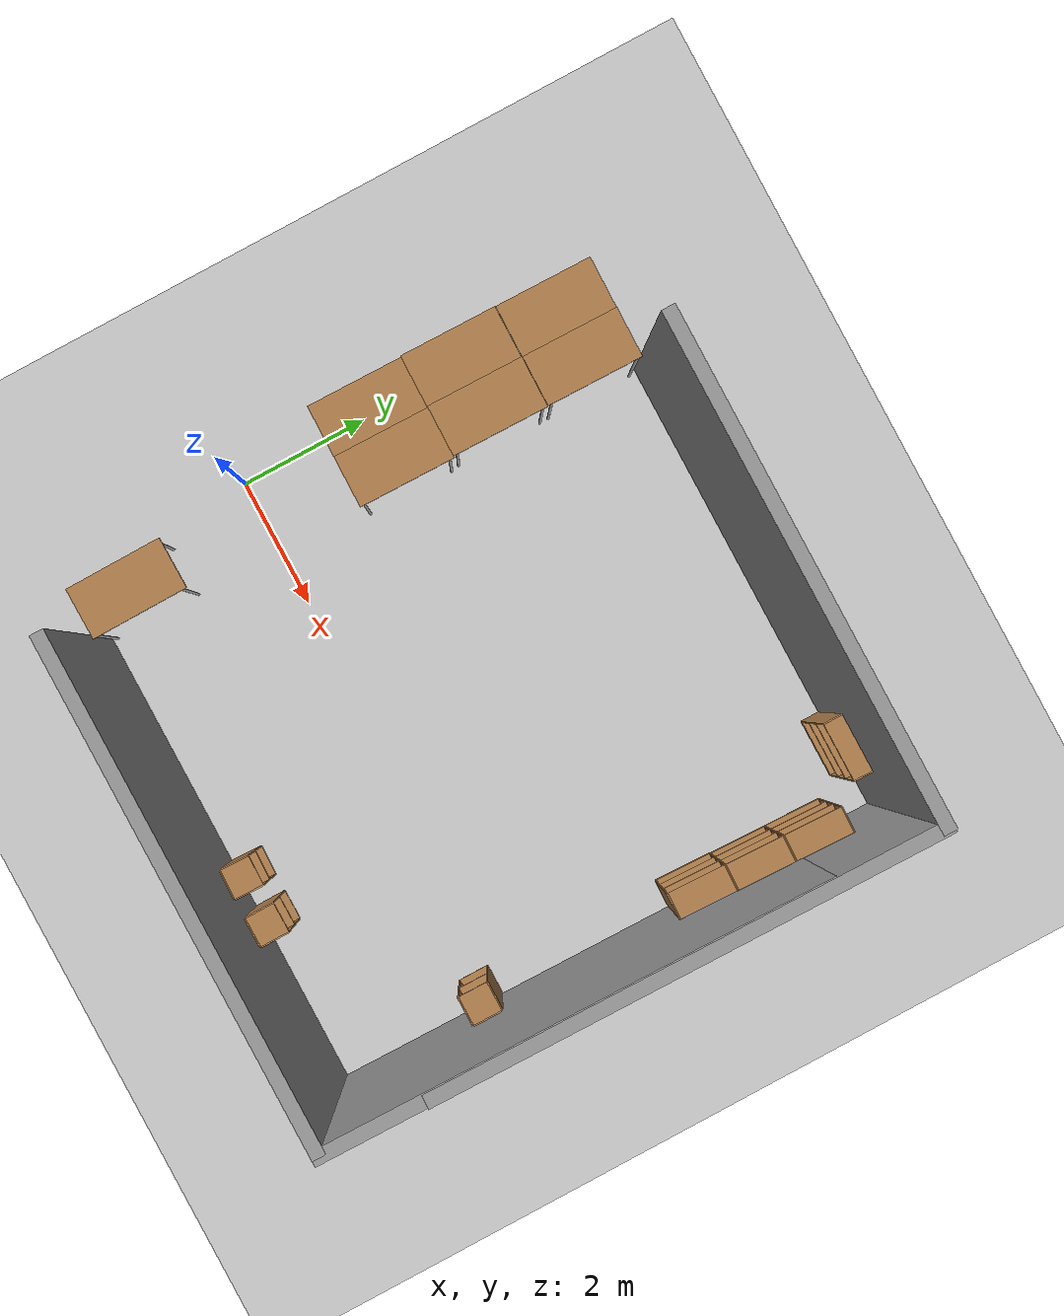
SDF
<sdf version="1.4">
 <world name="default">
  <model name="ground_plane">
   <static>1</static>
   <link name="link">
    <collision name="collision">
     <geometry><plane><normal>0 0 1</normal><size>100 100</size></plane></geometry>
     <surface><friction><ode><mu>100</mu><mu2>50</mu2></ode></friction></surface>
    </collision>
    <visual name="visual">
     <cast_shadows>0</cast_shadows>
     <geometry><plane><normal>0 0 1</normal><size>100 100</size></plane></geometry>
     <material>
      <script><uri>file://media/materials/scripts/gazebo.material</uri><name>Gazebo/Grey</name></script>
     </material>
    </visual>
    <velocity_decay><linear>0</linear><angular>0</angular></velocity_decay>
   </link>
  </model>
  <model name="grey_wall_0">
   <static>1</static>
   <link name="link">
    <pose>0 0 1.4 0 -0 0</pose>
    <collision name="collision"><geometry><box><size>7.5 0.2 2.8</size></box></geometry></collision>
    <visual name="visual">
     <cast_shadows>0</cast_shadows>
     <geometry><box><size>7.5 0.2 2.8</size></box></geometry>
     <material>
      <script>
       <uri>model://grey_wall/materials/scripts</uri>
       <uri>model://grey_wall/materials/textures</uri>
       <name>vrc/grey_wall</name>
      </script>
     </material>
    </visual>
    <velocity_decay><linear>0</linear><angular>0</angular></velocity_decay>
   </link>
   <pose>5 6 0 0 -0 0</pose>
  </model>
  <model name="table_5">
   <static>1</static>
   <link name="link">
    <collision name="surface">
     <pose>0 0 1 0 -0 0</pose>
     <geometry><box><size>1.5 0.8 0.03</size></box></geometry>
     <surface><friction><ode><mu>0.6</mu><mu2>0.6</mu2></ode></friction></surface>
    </collision>
    <visual name="visual1">
     <pose>0 0 1 0 -0 0</pose>
     <geometry><box><size>1.5 0.8 0.03</size></box></geometry>
     <material>
      <script><uri>file://media/materials/scripts/gazebo.material</uri><name>Gazebo/Wood</name></script>
     </material>
    </visual>
    <collision name="front_left_leg">
     <pose>0.68 0.38 0.5 0 -0 0</pose>
     <geometry><cylinder><radius>0.02</radius><length>1</length></cylinder></geometry>
    </collision>
    <visual name="front_left_leg">
     <pose>0.68 0.38 0.5 0 -0 0</pose>
     <geometry><cylinder><radius>0.02</radius><length>1</length></cylinder></geometry>
     <material>
      <script><uri>file://media/materials/scripts/gazebo.material</uri><name>Gazebo/Grey</name></script>
     </material>
    </visual>
    <collision name="front_right_leg">
     <pose>0.68 -0.38 0.5 0 -0 0</pose>
     <geometry><cylinder><radius>0.02</radius><length>1</length></cylinder></geometry>
    </collision>
    <visual name="front_right_leg">
     <pose>0.68 -0.38 0.5 0 -0 0</pose>
     <geometry><cylinder><radius>0.02</radius><length>1</length></cylinder></geometry>
     <material>
      <script><uri>file://media/materials/scripts/gazebo.material</uri><name>Gazebo/Grey</name></script>
     </material>
    </visual>
    <collision name="back_right_leg">
     <pose>-0.68 -0.38 0.5 0 -0 0</pose>
     <geometry><cylinder><radius>0.02</radius><length>1</length></cylinder></geometry>
    </collision>
    <visual name="back_right_leg">
     <pose>-0.68 -0.38 0.5 0 -0 0</pose>
     <geometry><cylinder><radius>0.02</radius><length>1</length></cylinder></geometry>
     <material>
      <script><uri>file://media/materials/scripts/gazebo.material</uri><name>Gazebo/Grey</name></script>
     </material>
    </visual>
    <collision name="back_left_leg">
     <pose>-0.68 0.38 0.5 0 -0 0</pose>
     <geometry><cylinder><radius>0.02</radius><length>1</length></cylinder></geometry>
    </collision>
    <visual name="back_left_leg">
     <pose>-0.68 0.38 0.5 0 -0 0</pose>
     <geometry><cylinder><radius>0.02</radius><length>1</length></cylinder></geometry>
     <material>
      <script><uri>file://media/materials/scripts/gazebo.material</uri><name>Gazebo/Grey</name></script>
     </material>
    </visual>
    <velocity_decay><linear>0</linear><angular>0</angular></velocity_decay>
   </link>
   <pose>0.132371 5.12025 0 0 -0 1.56</pose>
  </model>
  <model name="table_6">
   <static>1</static>
   <link name="link">
    <collision name="surface">
     <pose>0 0 1 0 -0 0</pose>
     <geometry><box><size>1.5 0.8 0.03</size></box></geometry>
     <surface><friction><ode><mu>0.6</mu><mu2>0.6</mu2></ode></friction></surface>
    </collision>
    <visual name="visual1">
     <pose>0 0 1 0 -0 0</pose>
     <geometry><box><size>1.5 0.8 0.03</size></box></geometry>
     <material>
      <script><uri>file://media/materials/scripts/gazebo.material</uri><name>Gazebo/Wood</name></script>
     </material>
    </visual>
    <collision name="front_left_leg">
     <pose>0.68 0.38 0.5 0 -0 0</pose>
     <geometry><cylinder><radius>0.02</radius><length>1</length></cylinder></geometry>
    </collision>
    <visual name="front_left_leg">
     <pose>0.68 0.38 0.5 0 -0 0</pose>
     <geometry><cylinder><radius>0.02</radius><length>1</length></cylinder></geometry>
     <material>
      <script><uri>file://media/materials/scripts/gazebo.material</uri><name>Gazebo/Grey</name></script>
     </material>
    </visual>
    <collision name="front_right_leg">
     <pose>0.68 -0.38 0.5 0 -0 0</pose>
     <geometry><cylinder><radius>0.02</radius><length>1</length></cylinder></geometry>
    </collision>
    <visual name="front_right_leg">
     <pose>0.68 -0.38 0.5 0 -0 0</pose>
     <geometry><cylinder><radius>0.02</radius><length>1</length></cylinder></geometry>
     <material>
      <script><uri>file://media/materials/scripts/gazebo.material</uri><name>Gazebo/Grey</name></script>
     </material>
    </visual>
    <collision name="back_right_leg">
     <pose>-0.68 -0.38 0.5 0 -0 0</pose>
     <geometry><cylinder><radius>0.02</radius><length>1</length></cylinder></geometry>
    </collision>
    <visual name="back_right_leg">
     <pose>-0.68 -0.38 0.5 0 -0 0</pose>
     <geometry><cylinder><radius>0.02</radius><length>1</length></cylinder></geometry>
     <material>
      <script><uri>file://media/materials/scripts/gazebo.material</uri><name>Gazebo/Grey</name></script>
     </material>
    </visual>
    <collision name="back_left_leg">
     <pose>-0.68 0.38 0.5 0 -0 0</pose>
     <geometry><cylinder><radius>0.02</radius><length>1</length></cylinder></geometry>
    </collision>
    <visual name="back_left_leg">
     <pose>-0.68 0.38 0.5 0 -0 0</pose>
     <geometry><cylinder><radius>0.02</radius><length>1</length></cylinder></geometry>
     <material>
      <script><uri>file://media/materials/scripts/gazebo.material</uri><name>Gazebo/Grey</name></script>
     </material>
    </visual>
    <velocity_decay><linear>0</linear><angular>0</angular></velocity_decay>
   </link>
   <pose>0.911696 5.11618 0 0 -0 1.56</pose>
  </model>
  <model name="table_7">
   <static>1</static>
   <link name="link">
    <collision name="surface">
     <pose>0 0 1 0 -0 0</pose>
     <geometry><box><size>1.5 0.8 0.03</size></box></geometry>
     <surface><friction><ode><mu>0.6</mu><mu2>0.6</mu2></ode></friction></surface>
    </collision>
    <visual name="visual1">
     <pose>0 0 1 0 -0 0</pose>
     <geometry><box><size>1.5 0.8 0.03</size></box></geometry>
     <material>
      <script><uri>file://media/materials/scripts/gazebo.material</uri><name>Gazebo/Wood</name></script>
     </material>
    </visual>
    <collision name="front_left_leg">
     <pose>0.68 0.38 0.5 0 -0 0</pose>
     <geometry><cylinder><radius>0.02</radius><length>1</length></cylinder></geometry>
    </collision>
    <visual name="front_left_leg">
     <pose>0.68 0.38 0.5 0 -0 0</pose>
     <geometry><cylinder><radius>0.02</radius><length>1</length></cylinder></geometry>
     <material>
      <script><uri>file://media/materials/scripts/gazebo.material</uri><name>Gazebo/Grey</name></script>
     </material>
    </visual>
    <collision name="front_right_leg">
     <pose>0.68 -0.38 0.5 0 -0 0</pose>
     <geometry><cylinder><radius>0.02</radius><length>1</length></cylinder></geometry>
    </collision>
    <visual name="front_right_leg">
     <pose>0.68 -0.38 0.5 0 -0 0</pose>
     <geometry><cylinder><radius>0.02</radius><length>1</length></cylinder></geometry>
     <material>
      <script><uri>file://media/materials/scripts/gazebo.material</uri><name>Gazebo/Grey</name></script>
     </material>
    </visual>
    <collision name="back_right_leg">
     <pose>-0.68 -0.38 0.5 0 -0 0</pose>
     <geometry><cylinder><radius>0.02</radius><length>1</length></cylinder></geometry>
    </collision>
    <visual name="back_right_leg">
     <pose>-0.68 -0.38 0.5 0 -0 0</pose>
     <geometry><cylinder><radius>0.02</radius><length>1</length></cylinder></geometry>
     <material>
      <script><uri>file://media/materials/scripts/gazebo.material</uri><name>Gazebo/Grey</name></script>
     </material>
    </visual>
    <collision name="back_left_leg">
     <pose>-0.68 0.38 0.5 0 -0 0</pose>
     <geometry><cylinder><radius>0.02</radius><length>1</length></cylinder></geometry>
    </collision>
    <visual name="back_left_leg">
     <pose>-0.68 0.38 0.5 0 -0 0</pose>
     <geometry><cylinder><radius>0.02</radius><length>1</length></cylinder></geometry>
     <material>
      <script><uri>file://media/materials/scripts/gazebo.material</uri><name>Gazebo/Grey</name></script>
     </material>
    </visual>
    <velocity_decay><linear>0</linear><angular>0</angular></velocity_decay>
   </link>
   <pose>0.111052 3.61177 0 0 -0 1.56</pose>
  </model>
  <model name="table_8">
   <static>1</static>
   <link name="link">
    <collision name="surface">
     <pose>0 0 1 0 -0 0</pose>
     <geometry><box><size>1.5 0.8 0.03</size></box></geometry>
     <surface><friction><ode><mu>0.6</mu><mu2>0.6</mu2></ode></friction></surface>
    </collision>
    <visual name="visual1">
     <pose>0 0 1 0 -0 0</pose>
     <geometry><box><size>1.5 0.8 0.03</size></box></geometry>
     <material>
      <script><uri>file://media/materials/scripts/gazebo.material</uri><name>Gazebo/Wood</name></script>
     </material>
    </visual>
    <collision name="front_left_leg">
     <pose>0.68 0.38 0.5 0 -0 0</pose>
     <geometry><cylinder><radius>0.02</radius><length>1</length></cylinder></geometry>
    </collision>
    <visual name="front_left_leg">
     <pose>0.68 0.38 0.5 0 -0 0</pose>
     <geometry><cylinder><radius>0.02</radius><length>1</length></cylinder></geometry>
     <material>
      <script><uri>file://media/materials/scripts/gazebo.material</uri><name>Gazebo/Grey</name></script>
     </material>
    </visual>
    <collision name="front_right_leg">
     <pose>0.68 -0.38 0.5 0 -0 0</pose>
     <geometry><cylinder><radius>0.02</radius><length>1</length></cylinder></geometry>
    </collision>
    <visual name="front_right_leg">
     <pose>0.68 -0.38 0.5 0 -0 0</pose>
     <geometry><cylinder><radius>0.02</radius><length>1</length></cylinder></geometry>
     <material>
      <script><uri>file://media/materials/scripts/gazebo.material</uri><name>Gazebo/Grey</name></script>
     </material>
    </visual>
    <collision name="back_right_leg">
     <pose>-0.68 -0.38 0.5 0 -0 0</pose>
     <geometry><cylinder><radius>0.02</radius><length>1</length></cylinder></geometry>
    </collision>
    <visual name="back_right_leg">
     <pose>-0.68 -0.38 0.5 0 -0 0</pose>
     <geometry><cylinder><radius>0.02</radius><length>1</length></cylinder></geometry>
     <material>
      <script><uri>file://media/materials/scripts/gazebo.material</uri><name>Gazebo/Grey</name></script>
     </material>
    </visual>
    <collision name="back_left_leg">
     <pose>-0.68 0.38 0.5 0 -0 0</pose>
     <geometry><cylinder><radius>0.02</radius><length>1</length></cylinder></geometry>
    </collision>
    <visual name="back_left_leg">
     <pose>-0.68 0.38 0.5 0 -0 0</pose>
     <geometry><cylinder><radius>0.02</radius><length>1</length></cylinder></geometry>
     <material>
      <script><uri>file://media/materials/scripts/gazebo.material</uri><name>Gazebo/Grey</name></script>
     </material>
    </visual>
    <velocity_decay><linear>0</linear><angular>0</angular></velocity_decay>
   </link>
   <pose>0.901342 3.61101 0 0 -0 1.56</pose>
  </model>
  <model name="table_9">
   <static>1</static>
   <link name="link">
    <collision name="surface">
     <pose>0 0 1 0 -0 0</pose>
     <geometry><box><size>1.5 0.8 0.03</size></box></geometry>
     <surface><friction><ode><mu>0.6</mu><mu2>0.6</mu2></ode></friction></surface>
    </collision>
    <visual name="visual1">
     <pose>0 0 1 0 -0 0</pose>
     <geometry><box><size>1.5 0.8 0.03</size></box></geometry>
     <material>
      <script><uri>file://media/materials/scripts/gazebo.material</uri><name>Gazebo/Wood</name></script>
     </material>
    </visual>
    <collision name="front_left_leg">
     <pose>0.68 0.38 0.5 0 -0 0</pose>
     <geometry><cylinder><radius>0.02</radius><length>1</length></cylinder></geometry>
    </collision>
    <visual name="front_left_leg">
     <pose>0.68 0.38 0.5 0 -0 0</pose>
     <geometry><cylinder><radius>0.02</radius><length>1</length></cylinder></geometry>
     <material>
      <script><uri>file://media/materials/scripts/gazebo.material</uri><name>Gazebo/Grey</name></script>
     </material>
    </visual>
    <collision name="front_right_leg">
     <pose>0.68 -0.38 0.5 0 -0 0</pose>
     <geometry><cylinder><radius>0.02</radius><length>1</length></cylinder></geometry>
    </collision>
    <visual name="front_right_leg">
     <pose>0.68 -0.38 0.5 0 -0 0</pose>
     <geometry><cylinder><radius>0.02</radius><length>1</length></cylinder></geometry>
     <material>
      <script><uri>file://media/materials/scripts/gazebo.material</uri><name>Gazebo/Grey</name></script>
     </material>
    </visual>
    <collision name="back_right_leg">
     <pose>-0.68 -0.38 0.5 0 -0 0</pose>
     <geometry><cylinder><radius>0.02</radius><length>1</length></cylinder></geometry>
    </collision>
    <visual name="back_right_leg">
     <pose>-0.68 -0.38 0.5 0 -0 0</pose>
     <geometry><cylinder><radius>0.02</radius><length>1</length></cylinder></geometry>
     <material>
      <script><uri>file://media/materials/scripts/gazebo.material</uri><name>Gazebo/Grey</name></script>
     </material>
    </visual>
    <collision name="back_left_leg">
     <pose>-0.68 0.38 0.5 0 -0 0</pose>
     <geometry><cylinder><radius>0.02</radius><length>1</length></cylinder></geometry>
    </collision>
    <visual name="back_left_leg">
     <pose>-0.68 0.38 0.5 0 -0 0</pose>
     <geometry><cylinder><radius>0.02</radius><length>1</length></cylinder></geometry>
     <material>
      <script><uri>file://media/materials/scripts/gazebo.material</uri><name>Gazebo/Grey</name></script>
     </material>
    </visual>
    <velocity_decay><linear>0</linear><angular>0</angular></velocity_decay>
   </link>
   <pose>0.113272 2.1269 0 0 -0 1.56</pose>
  </model>
  <model name="table_10">
   <static>1</static>
   <link name="link">
    <collision name="surface">
     <pose>0 0 1 0 -0 0</pose>
     <geometry><box><size>1.5 0.8 0.03</size></box></geometry>
     <surface><friction><ode><mu>0.6</mu><mu2>0.6</mu2></ode></friction></surface>
    </collision>
    <visual name="visual1">
     <pose>0 0 1 0 -0 0</pose>
     <geometry><box><size>1.5 0.8 0.03</size></box></geometry>
     <material>
      <script><uri>file://media/materials/scripts/gazebo.material</uri><name>Gazebo/Wood</name></script>
     </material>
    </visual>
    <collision name="front_left_leg">
     <pose>0.68 0.38 0.5 0 -0 0</pose>
     <geometry><cylinder><radius>0.02</radius><length>1</length></cylinder></geometry>
    </collision>
    <visual name="front_left_leg">
     <pose>0.68 0.38 0.5 0 -0 0</pose>
     <geometry><cylinder><radius>0.02</radius><length>1</length></cylinder></geometry>
     <material>
      <script><uri>file://media/materials/scripts/gazebo.material</uri><name>Gazebo/Grey</name></script>
     </material>
    </visual>
    <collision name="front_right_leg">
     <pose>0.68 -0.38 0.5 0 -0 0</pose>
     <geometry><cylinder><radius>0.02</radius><length>1</length></cylinder></geometry>
    </collision>
    <visual name="front_right_leg">
     <pose>0.68 -0.38 0.5 0 -0 0</pose>
     <geometry><cylinder><radius>0.02</radius><length>1</length></cylinder></geometry>
     <material>
      <script><uri>file://media/materials/scripts/gazebo.material</uri><name>Gazebo/Grey</name></script>
     </material>
    </visual>
    <collision name="back_right_leg">
     <pose>-0.68 -0.38 0.5 0 -0 0</pose>
     <geometry><cylinder><radius>0.02</radius><length>1</length></cylinder></geometry>
    </collision>
    <visual name="back_right_leg">
     <pose>-0.68 -0.38 0.5 0 -0 0</pose>
     <geometry><cylinder><radius>0.02</radius><length>1</length></cylinder></geometry>
     <material>
      <script><uri>file://media/materials/scripts/gazebo.material</uri><name>Gazebo/Grey</name></script>
     </material>
    </visual>
    <collision name="back_left_leg">
     <pose>-0.68 0.38 0.5 0 -0 0</pose>
     <geometry><cylinder><radius>0.02</radius><length>1</length></cylinder></geometry>
    </collision>
    <visual name="back_left_leg">
     <pose>-0.68 0.38 0.5 0 -0 0</pose>
     <geometry><cylinder><radius>0.02</radius><length>1</length></cylinder></geometry>
     <material>
      <script><uri>file://media/materials/scripts/gazebo.material</uri><name>Gazebo/Grey</name></script>
     </material>
    </visual>
    <velocity_decay><linear>0</linear><angular>0</angular></velocity_decay>
   </link>
   <pose>0.912943 2.11882 0 0 -0 1.56</pose>
  </model>
  <model name="grey_wall_4">
   <static>1</static>
   <link name="link">
    <pose>0 0 1.4 0 -0 0</pose>
    <collision name="collision"><geometry><box><size>7.5 0.2 2.8</size></box></geometry></collision>
    <visual name="visual">
     <cast_shadows>0</cast_shadows>
     <geometry><box><size>7.5 0.2 2.8</size></box></geometry>
     <material>
      <script>
       <uri>model://grey_wall/materials/scripts</uri>
       <uri>model://grey_wall/materials/textures</uri>
       <name>vrc/grey_wall</name>
      </script>
     </material>
    </visual>
    <velocity_decay><linear>0</linear><angular>0</angular></velocity_decay>
   </link>
   <pose>4.83289 -2.92791 0 0 -0 0</pose>
  </model>
  <model name="grey_wall_5">
   <static>1</static>
   <link name="link">
    <pose>0 0 1.4 0 -0 0</pose>
    <collision name="collision"><geometry><box><size>7.5 0.2 2.8</size></box></geometry></collision>
    <visual name="visual">
     <cast_shadows>0</cast_shadows>
     <geometry><box><size>7.5 0.2 2.8</size></box></geometry>
     <material>
      <script>
       <uri>model://grey_wall/materials/scripts</uri>
       <uri>model://grey_wall/materials/textures</uri>
       <name>vrc/grey_wall</name>
      </script>
     </material>
    </visual>
    <velocity_decay><linear>0</linear><angular>0</angular></velocity_decay>
   </link>
   <pose>8.6398 2.326 0 0 -0 1.56</pose>
  </model>
  <model name="grey_wall_6">
   <static>1</static>
   <link name="link">
    <pose>0 0 1.4 0 -0 0</pose>
    <collision name="collision"><geometry><box><size>7.5 0.2 2.8</size></box></geometry></collision>
    <visual name="visual">
     <cast_shadows>0</cast_shadows>
     <geometry><box><size>7.5 0.2 2.8</size></box></geometry>
     <material>
      <script>
       <uri>model://grey_wall/materials/scripts</uri>
       <uri>model://grey_wall/materials/textures</uri>
       <name>vrc/grey_wall</name>
      </script>
     </material>
    </visual>
    <velocity_decay><linear>0</linear><angular>0</angular></velocity_decay>
   </link>
   <pose>8.60351 0.723193 0 0 -0 1.56</pose>
  </model>
  <model name="table_14">
   <static>1</static>
   <link name="link">
    <collision name="surface">
     <pose>0 0 1 0 -0 0</pose>
     <geometry><box><size>1.5 0.8 0.03</size></box></geometry>
     <surface><friction><ode><mu>0.6</mu><mu2>0.6</mu2></ode></friction></surface>
    </collision>
    <visual name="visual1">
     <pose>0 0 1 0 -0 0</pose>
     <geometry><box><size>1.5 0.8 0.03</size></box></geometry>
     <material>
      <script><uri>file://media/materials/scripts/gazebo.material</uri><name>Gazebo/Wood</name></script>
     </material>
    </visual>
    <collision name="front_left_leg">
     <pose>0.68 0.38 0.5 0 -0 0</pose>
     <geometry><cylinder><radius>0.02</radius><length>1</length></cylinder></geometry>
    </collision>
    <visual name="front_left_leg">
     <pose>0.68 0.38 0.5 0 -0 0</pose>
     <geometry><cylinder><radius>0.02</radius><length>1</length></cylinder></geometry>
     <material>
      <script><uri>file://media/materials/scripts/gazebo.material</uri><name>Gazebo/Grey</name></script>
     </material>
    </visual>
    <collision name="front_right_leg">
     <pose>0.68 -0.38 0.5 0 -0 0</pose>
     <geometry><cylinder><radius>0.02</radius><length>1</length></cylinder></geometry>
    </collision>
    <visual name="front_right_leg">
     <pose>0.68 -0.38 0.5 0 -0 0</pose>
     <geometry><cylinder><radius>0.02</radius><length>1</length></cylinder></geometry>
     <material>
      <script><uri>file://media/materials/scripts/gazebo.material</uri><name>Gazebo/Grey</name></script>
     </material>
    </visual>
    <collision name="back_right_leg">
     <pose>-0.68 -0.38 0.5 0 -0 0</pose>
     <geometry><cylinder><radius>0.02</radius><length>1</length></cylinder></geometry>
    </collision>
    <visual name="back_right_leg">
     <pose>-0.68 -0.38 0.5 0 -0 0</pose>
     <geometry><cylinder><radius>0.02</radius><length>1</length></cylinder></geometry>
     <material>
      <script><uri>file://media/materials/scripts/gazebo.material</uri><name>Gazebo/Grey</name></script>
     </material>
    </visual>
    <collision name="back_left_leg">
     <pose>-0.68 0.38 0.5 0 -0 0</pose>
     <geometry><cylinder><radius>0.02</radius><length>1</length></cylinder></geometry>
    </collision>
    <visual name="back_left_leg">
     <pose>-0.68 0.38 0.5 0 -0 0</pose>
     <geometry><cylinder><radius>0.02</radius><length>1</length></cylinder></geometry>
     <material>
      <script><uri>file://media/materials/scripts/gazebo.material</uri><name>Gazebo/Grey</name></script>
     </material>
    </visual>
    <velocity_decay><linear>0</linear><angular>0</angular></velocity_decay>
   </link>
   <pose>0.750616 -2.07146 0 0 0 -1.56</pose>
  </model>
  <model name="bookshelf_1">
   <static>1</static>
   <link name="link">
    <inertial><mass>1</mass></inertial>
    <collision name="back">
     <pose>0 0.005 0.6 0 -0 0</pose>
     <geometry><box><size>0.9 0.01 1.2</size></box></geometry>
    </collision>
    <visual name="visual1">
     <pose>0 0.005 0.6 0 -0 0</pose>
     <geometry><box><size>0.9 0.01 1.2</size></box></geometry>
     <material>
      <script><uri>file://media/materials/scripts/gazebo.material</uri><name>Gazebo/Wood</name></script>
     </material>
    </visual>
    <collision name="left_side">
     <pose>0.45 -0.195 0.6 0 -0 0</pose>
     <geometry><box><size>0.02 0.4 1.2</size></box></geometry>
    </collision>
    <visual name="visual2">
     <pose>0.45 -0.195 0.6 0 -0 0</pose>
     <geometry><box><size>0.02 0.4 1.2</size></box></geometry>
     <material>
      <script><uri>file://media/materials/scripts/gazebo.material</uri><name>Gazebo/Wood</name></script>
     </material>
    </visual>
    <collision name="right_side">
     <pose>-0.45 -0.195 0.6 0 -0 0</pose>
     <geometry><box><size>0.02 0.4 1.2</size></box></geometry>
    </collision>
    <visual name="visual3">
     <pose>-0.45 -0.195 0.6 0 -0 0</pose>
     <geometry><box><size>0.02 0.4 1.2</size></box></geometry>
     <material>
      <script><uri>file://media/materials/scripts/gazebo.material</uri><name>Gazebo/Wood</name></script>
     </material>
    </visual>
    <collision name="bottom">
     <pose>0 -0.195 0.03 0 -0 0</pose>
     <geometry><box><size>0.88 0.4 0.06</size></box></geometry>
    </collision>
    <visual name="visual4">
     <pose>0 -0.195 0.03 0 -0 0</pose>
     <geometry><box><size>0.88 0.4 0.06</size></box></geometry>
     <material>
      <script><uri>file://media/materials/scripts/gazebo.material</uri><name>Gazebo/Wood</name></script>
     </material>
    </visual>
    <collision name="top">
     <pose>0 -0.195 1.19 0 -0 0</pose>
     <geometry><box><size>0.88 0.4 0.02</size></box></geometry>
    </collision>
    <visual name="visual5">
     <pose>0 -0.195 1.19 0 -0 0</pose>
     <geometry><box><size>0.88 0.4 0.02</size></box></geometry>
     <material>
      <script><uri>file://media/materials/scripts/gazebo.material</uri><name>Gazebo/Wood</name></script>
     </material>
    </visual>
    <collision name="low_shelf">
     <pose>0 -0.195 0.43 0 -0 0</pose>
     <geometry><box><size>0.88 0.4 0.02</size></box></geometry>
    </collision>
    <visual name="visual6">
     <pose>0 -0.195 0.43 0 -0 0</pose>
     <geometry><box><size>0.88 0.4 0.02</size></box></geometry>
     <material>
      <script><uri>file://media/materials/scripts/gazebo.material</uri><name>Gazebo/Wood</name></script>
     </material>
    </visual>
    <collision name="high_shelf">
     <pose>0 -0.195 0.8 0 -0 0</pose>
     <geometry><box><size>0.88 0.4 0.02</size></box></geometry>
    </collision>
    <visual name="visual7">
     <pose>0 -0.195 0.8 0 -0 0</pose>
     <geometry><box><size>0.88 0.4 0.02</size></box></geometry>
     <material>
      <script><uri>file://media/materials/scripts/gazebo.material</uri><name>Gazebo/Wood</name></script>
     </material>
    </visual>
    <velocity_decay><linear>0</linear><angular>0</angular></velocity_decay>
   </link>
   <pose>7.49375 6 0 0 -0 0</pose>
  </model>
  <model name="bookshelf_2">
   <static>1</static>
   <link name="link">
    <inertial><mass>1</mass></inertial>
    <collision name="back">
     <pose>0 0.005 0.6 0 -0 0</pose>
     <geometry><box><size>0.9 0.01 1.2</size></box></geometry>
    </collision>
    <visual name="visual1">
     <pose>0 0.005 0.6 0 -0 0</pose>
     <geometry><box><size>0.9 0.01 1.2</size></box></geometry>
     <material>
      <script><uri>file://media/materials/scripts/gazebo.material</uri><name>Gazebo/Wood</name></script>
     </material>
    </visual>
    <collision name="left_side">
     <pose>0.45 -0.195 0.6 0 -0 0</pose>
     <geometry><box><size>0.02 0.4 1.2</size></box></geometry>
    </collision>
    <visual name="visual2">
     <pose>0.45 -0.195 0.6 0 -0 0</pose>
     <geometry><box><size>0.02 0.4 1.2</size></box></geometry>
     <material>
      <script><uri>file://media/materials/scripts/gazebo.material</uri><name>Gazebo/Wood</name></script>
     </material>
    </visual>
    <collision name="right_side">
     <pose>-0.45 -0.195 0.6 0 -0 0</pose>
     <geometry><box><size>0.02 0.4 1.2</size></box></geometry>
    </collision>
    <visual name="visual3">
     <pose>-0.45 -0.195 0.6 0 -0 0</pose>
     <geometry><box><size>0.02 0.4 1.2</size></box></geometry>
     <material>
      <script><uri>file://media/materials/scripts/gazebo.material</uri><name>Gazebo/Wood</name></script>
     </material>
    </visual>
    <collision name="bottom">
     <pose>0 -0.195 0.03 0 -0 0</pose>
     <geometry><box><size>0.88 0.4 0.06</size></box></geometry>
    </collision>
    <visual name="visual4">
     <pose>0 -0.195 0.03 0 -0 0</pose>
     <geometry><box><size>0.88 0.4 0.06</size></box></geometry>
     <material>
      <script><uri>file://media/materials/scripts/gazebo.material</uri><name>Gazebo/Wood</name></script>
     </material>
    </visual>
    <collision name="top">
     <pose>0 -0.195 1.19 0 -0 0</pose>
     <geometry><box><size>0.88 0.4 0.02</size></box></geometry>
    </collision>
    <visual name="visual5">
     <pose>0 -0.195 1.19 0 -0 0</pose>
     <geometry><box><size>0.88 0.4 0.02</size></box></geometry>
     <material>
      <script><uri>file://media/materials/scripts/gazebo.material</uri><name>Gazebo/Wood</name></script>
     </material>
    </visual>
    <collision name="low_shelf">
     <pose>0 -0.195 0.43 0 -0 0</pose>
     <geometry><box><size>0.88 0.4 0.02</size></box></geometry>
    </collision>
    <visual name="visual6">
     <pose>0 -0.195 0.43 0 -0 0</pose>
     <geometry><box><size>0.88 0.4 0.02</size></box></geometry>
     <material>
      <script><uri>file://media/materials/scripts/gazebo.material</uri><name>Gazebo/Wood</name></script>
     </material>
    </visual>
    <collision name="high_shelf">
     <pose>0 -0.195 0.8 0 -0 0</pose>
     <geometry><box><size>0.88 0.4 0.02</size></box></geometry>
    </collision>
    <visual name="visual7">
     <pose>0 -0.195 0.8 0 -0 0</pose>
     <geometry><box><size>0.88 0.4 0.02</size></box></geometry>
     <material>
      <script><uri>file://media/materials/scripts/gazebo.material</uri><name>Gazebo/Wood</name></script>
     </material>
    </visual>
    <velocity_decay><linear>0</linear><angular>0</angular></velocity_decay>
   </link>
   <pose>8.54945 4.8263 0 0 0 -1.6</pose>
  </model>
  <model name="bookshelf_3">
   <static>1</static>
   <link name="link">
    <inertial><mass>1</mass></inertial>
    <collision name="back">
     <pose>0 0.005 0.6 0 -0 0</pose>
     <geometry><box><size>0.9 0.01 1.2</size></box></geometry>
    </collision>
    <visual name="visual1">
     <pose>0 0.005 0.6 0 -0 0</pose>
     <geometry><box><size>0.9 0.01 1.2</size></box></geometry>
     <material>
      <script><uri>file://media/materials/scripts/gazebo.material</uri><name>Gazebo/Wood</name></script>
     </material>
    </visual>
    <collision name="left_side">
     <pose>0.45 -0.195 0.6 0 -0 0</pose>
     <geometry><box><size>0.02 0.4 1.2</size></box></geometry>
    </collision>
    <visual name="visual2">
     <pose>0.45 -0.195 0.6 0 -0 0</pose>
     <geometry><box><size>0.02 0.4 1.2</size></box></geometry>
     <material>
      <script><uri>file://media/materials/scripts/gazebo.material</uri><name>Gazebo/Wood</name></script>
     </material>
    </visual>
    <collision name="right_side">
     <pose>-0.45 -0.195 0.6 0 -0 0</pose>
     <geometry><box><size>0.02 0.4 1.2</size></box></geometry>
    </collision>
    <visual name="visual3">
     <pose>-0.45 -0.195 0.6 0 -0 0</pose>
     <geometry><box><size>0.02 0.4 1.2</size></box></geometry>
     <material>
      <script><uri>file://media/materials/scripts/gazebo.material</uri><name>Gazebo/Wood</name></script>
     </material>
    </visual>
    <collision name="bottom">
     <pose>0 -0.195 0.03 0 -0 0</pose>
     <geometry><box><size>0.88 0.4 0.06</size></box></geometry>
    </collision>
    <visual name="visual4">
     <pose>0 -0.195 0.03 0 -0 0</pose>
     <geometry><box><size>0.88 0.4 0.06</size></box></geometry>
     <material>
      <script><uri>file://media/materials/scripts/gazebo.material</uri><name>Gazebo/Wood</name></script>
     </material>
    </visual>
    <collision name="top">
     <pose>0 -0.195 1.19 0 -0 0</pose>
     <geometry><box><size>0.88 0.4 0.02</size></box></geometry>
    </collision>
    <visual name="visual5">
     <pose>0 -0.195 1.19 0 -0 0</pose>
     <geometry><box><size>0.88 0.4 0.02</size></box></geometry>
     <material>
      <script><uri>file://media/materials/scripts/gazebo.material</uri><name>Gazebo/Wood</name></script>
     </material>
    </visual>
    <collision name="low_shelf">
     <pose>0 -0.195 0.43 0 -0 0</pose>
     <geometry><box><size>0.88 0.4 0.02</size></box></geometry>
    </collision>
    <visual name="visual6">
     <pose>0 -0.195 0.43 0 -0 0</pose>
     <geometry><box><size>0.88 0.4 0.02</size></box></geometry>
     <material>
      <script><uri>file://media/materials/scripts/gazebo.material</uri><name>Gazebo/Wood</name></script>
     </material>
    </visual>
    <collision name="high_shelf">
     <pose>0 -0.195 0.8 0 -0 0</pose>
     <geometry><box><size>0.88 0.4 0.02</size></box></geometry>
    </collision>
    <visual name="visual7">
     <pose>0 -0.195 0.8 0 -0 0</pose>
     <geometry><box><size>0.88 0.4 0.02</size></box></geometry>
     <material>
      <script><uri>file://media/materials/scripts/gazebo.material</uri><name>Gazebo/Wood</name></script>
     </material>
    </visual>
    <velocity_decay><linear>0</linear><angular>0</angular></velocity_decay>
   </link>
   <pose>8.52452 3.92169 0 0 0 -1.6</pose>
  </model>
  <model name="bookshelf_4">
   <static>1</static>
   <link name="link">
    <inertial><mass>1</mass></inertial>
    <collision name="back">
     <pose>0 0.005 0.6 0 -0 0</pose>
     <geometry><box><size>0.9 0.01 1.2</size></box></geometry>
    </collision>
    <visual name="visual1">
     <pose>0 0.005 0.6 0 -0 0</pose>
     <geometry><box><size>0.9 0.01 1.2</size></box></geometry>
     <material>
      <script><uri>file://media/materials/scripts/gazebo.material</uri><name>Gazebo/Wood</name></script>
     </material>
    </visual>
    <collision name="left_side">
     <pose>0.45 -0.195 0.6 0 -0 0</pose>
     <geometry><box><size>0.02 0.4 1.2</size></box></geometry>
    </collision>
    <visual name="visual2">
     <pose>0.45 -0.195 0.6 0 -0 0</pose>
     <geometry><box><size>0.02 0.4 1.2</size></box></geometry>
     <material>
      <script><uri>file://media/materials/scripts/gazebo.material</uri><name>Gazebo/Wood</name></script>
     </material>
    </visual>
    <collision name="right_side">
     <pose>-0.45 -0.195 0.6 0 -0 0</pose>
     <geometry><box><size>0.02 0.4 1.2</size></box></geometry>
    </collision>
    <visual name="visual3">
     <pose>-0.45 -0.195 0.6 0 -0 0</pose>
     <geometry><box><size>0.02 0.4 1.2</size></box></geometry>
     <material>
      <script><uri>file://media/materials/scripts/gazebo.material</uri><name>Gazebo/Wood</name></script>
     </material>
    </visual>
    <collision name="bottom">
     <pose>0 -0.195 0.03 0 -0 0</pose>
     <geometry><box><size>0.88 0.4 0.06</size></box></geometry>
    </collision>
    <visual name="visual4">
     <pose>0 -0.195 0.03 0 -0 0</pose>
     <geometry><box><size>0.88 0.4 0.06</size></box></geometry>
     <material>
      <script><uri>file://media/materials/scripts/gazebo.material</uri><name>Gazebo/Wood</name></script>
     </material>
    </visual>
    <collision name="top">
     <pose>0 -0.195 1.19 0 -0 0</pose>
     <geometry><box><size>0.88 0.4 0.02</size></box></geometry>
    </collision>
    <visual name="visual5">
     <pose>0 -0.195 1.19 0 -0 0</pose>
     <geometry><box><size>0.88 0.4 0.02</size></box></geometry>
     <material>
      <script><uri>file://media/materials/scripts/gazebo.material</uri><name>Gazebo/Wood</name></script>
     </material>
    </visual>
    <collision name="low_shelf">
     <pose>0 -0.195 0.43 0 -0 0</pose>
     <geometry><box><size>0.88 0.4 0.02</size></box></geometry>
    </collision>
    <visual name="visual6">
     <pose>0 -0.195 0.43 0 -0 0</pose>
     <geometry><box><size>0.88 0.4 0.02</size></box></geometry>
     <material>
      <script><uri>file://media/materials/scripts/gazebo.material</uri><name>Gazebo/Wood</name></script>
     </material>
    </visual>
    <collision name="high_shelf">
     <pose>0 -0.195 0.8 0 -0 0</pose>
     <geometry><box><size>0.88 0.4 0.02</size></box></geometry>
    </collision>
    <visual name="visual7">
     <pose>0 -0.195 0.8 0 -0 0</pose>
     <geometry><box><size>0.88 0.4 0.02</size></box></geometry>
     <material>
      <script><uri>file://media/materials/scripts/gazebo.material</uri><name>Gazebo/Wood</name></script>
     </material>
    </visual>
    <velocity_decay><linear>0</linear><angular>0</angular></velocity_decay>
   </link>
   <pose>8.49255 3.01789 0 0 0 -1.6</pose>
  </model>
  <model name="cabinet">
   <static>1</static>
   <link name="cabinet_bottom_plate">
    <inertial>
     <pose>0 0 -1 0 -0 0</pose>
     <inertia><ixx>2.05</ixx><ixy>0</ixy><ixz>0</ixz><iyy>2.05</iyy><iyz>0</iyz><izz>2.05</izz></inertia>
     <mass>25</mass>
    </inertial>
    <collision name="cabinet_bottom_plate_geom">
     <pose>0 0 0.01 0 -0 0</pose>
     <geometry><box><size>0.45 0.45 0.02</size></box></geometry>
    </collision>
    <visual name="cabinet_bottom_plate_geom_visual">
     <pose>0 0 0.01 0 -0 0</pose>
     <geometry><box><size>0.45 0.45 0.02</size></box></geometry>
     <material>
      <script><uri>file://media/materials/scripts/gazebo.material</uri><name>Gazebo/Wood</name></script>
     </material>
    </visual>
    <collision name="cabinet_bottom_plate_geom_cabinet_back_plate">
     <pose>0.235 0 0.51 0 -0 0</pose>
     <geometry><box><size>0.02 0.45 1.02</size></box></geometry>
    </collision>
    <visual name="cabinet_bottom_plate_geom_cabinet_back_plate_visual">
     <pose>0.235 0 0.51 0 -0 0</pose>
     <geometry><box><size>0.02 0.45 1.02</size></box></geometry>
     <material>
      <script><uri>file://media/materials/scripts/gazebo.material</uri><name>Gazebo/Wood</name></script>
     </material>
    </visual>
    <collision name="cabinet_bottom_plate_geom_cabinet_left_plate">
     <pose>0 0.235 0.51 0 -0 0</pose>
     <geometry><box><size>0.45 0.02 1.02</size></box></geometry>
    </collision>
    <visual name="cabinet_bottom_plate_geom_cabinet_left_plate_visual">
     <pose>0 0.235 0.51 0 -0 0</pose>
     <geometry><box><size>0.45 0.02 1.02</size></box></geometry>
     <material>
      <script><uri>file://media/materials/scripts/gazebo.material</uri><name>Gazebo/Wood</name></script>
     </material>
    </visual>
    <collision name="cabinet_bottom_plate_geom_cabinet_middle_plate">
     <pose>0 0 0.51 0 -0 0</pose>
     <geometry><box><size>0.45 0.45 0.02</size></box></geometry>
    </collision>
    <visual name="cabinet_bottom_plate_geom_cabinet_middle_plate_visual">
     <pose>0 0 0.51 0 -0 0</pose>
     <geometry><box><size>0.45 0.45 0.02</size></box></geometry>
     <material>
      <script><uri>file://media/materials/scripts/gazebo.material</uri><name>Gazebo/Wood</name></script>
     </material>
    </visual>
    <collision name="cabinet_bottom_plate_geom_cabinet_right_plate">
     <pose>0 -0.235 0.51 0 -0 0</pose>
     <geometry><box><size>0.45 0.02 1.02</size></box></geometry>
    </collision>
    <visual name="cabinet_bottom_plate_geom_cabinet_right_plate_visual">
     <pose>0 -0.235 0.51 0 -0 0</pose>
     <geometry><box><size>0.45 0.02 1.02</size></box></geometry>
     <material>
      <script><uri>file://media/materials/scripts/gazebo.material</uri><name>Gazebo/Wood</name></script>
     </material>
    </visual>
    <collision name="cabinet_bottom_plate_geom_cabinet_top_plate">
     <pose>0 0 1.01 0 -0 0</pose>
     <geometry><box><size>0.45 0.45 0.02</size></box></geometry>
    </collision>
    <visual name="cabinet_bottom_plate_geom_cabinet_top_plate_visual">
     <pose>0 0 1.01 0 -0 0</pose>
     <geometry><box><size>0.45 0.45 0.02</size></box></geometry>
     <material>
      <script><uri>file://media/materials/scripts/gazebo.material</uri><name>Gazebo/Wood</name></script>
     </material>
    </visual>
    <velocity_decay><linear>0</linear><angular>0</angular></velocity_decay>
   </link>
   <pose>8.23973 -0.45663 0 0 -0 0</pose>
  </model>
  <model name="cabinet_0">
   <static>1</static>
   <link name="cabinet_bottom_plate">
    <inertial>
     <pose>0 0 -1 0 -0 0</pose>
     <inertia><ixx>2.05</ixx><ixy>0</ixy><ixz>0</ixz><iyy>2.05</iyy><iyz>0</iyz><izz>2.05</izz></inertia>
     <mass>25</mass>
    </inertial>
    <collision name="cabinet_bottom_plate_geom">
     <pose>0 0 0.01 0 -0 0</pose>
     <geometry><box><size>0.45 0.45 0.02</size></box></geometry>
    </collision>
    <visual name="cabinet_bottom_plate_geom_visual">
     <pose>0 0 0.01 0 -0 0</pose>
     <geometry><box><size>0.45 0.45 0.02</size></box></geometry>
     <material>
      <script><uri>file://media/materials/scripts/gazebo.material</uri><name>Gazebo/Wood</name></script>
     </material>
    </visual>
    <collision name="cabinet_bottom_plate_geom_cabinet_back_plate">
     <pose>0.235 0 0.51 0 -0 0</pose>
     <geometry><box><size>0.02 0.45 1.02</size></box></geometry>
    </collision>
    <visual name="cabinet_bottom_plate_geom_cabinet_back_plate_visual">
     <pose>0.235 0 0.51 0 -0 0</pose>
     <geometry><box><size>0.02 0.45 1.02</size></box></geometry>
     <material>
      <script><uri>file://media/materials/scripts/gazebo.material</uri><name>Gazebo/Wood</name></script>
     </material>
    </visual>
    <collision name="cabinet_bottom_plate_geom_cabinet_left_plate">
     <pose>0 0.235 0.51 0 -0 0</pose>
     <geometry><box><size>0.45 0.02 1.02</size></box></geometry>
    </collision>
    <visual name="cabinet_bottom_plate_geom_cabinet_left_plate_visual">
     <pose>0 0.235 0.51 0 -0 0</pose>
     <geometry><box><size>0.45 0.02 1.02</size></box></geometry>
     <material>
      <script><uri>file://media/materials/scripts/gazebo.material</uri><name>Gazebo/Wood</name></script>
     </material>
    </visual>
    <collision name="cabinet_bottom_plate_geom_cabinet_middle_plate">
     <pose>0 0 0.51 0 -0 0</pose>
     <geometry><box><size>0.45 0.45 0.02</size></box></geometry>
    </collision>
    <visual name="cabinet_bottom_plate_geom_cabinet_middle_plate_visual">
     <pose>0 0 0.51 0 -0 0</pose>
     <geometry><box><size>0.45 0.45 0.02</size></box></geometry>
     <material>
      <script><uri>file://media/materials/scripts/gazebo.material</uri><name>Gazebo/Wood</name></script>
     </material>
    </visual>
    <collision name="cabinet_bottom_plate_geom_cabinet_right_plate">
     <pose>0 -0.235 0.51 0 -0 0</pose>
     <geometry><box><size>0.45 0.02 1.02</size></box></geometry>
    </collision>
    <visual name="cabinet_bottom_plate_geom_cabinet_right_plate_visual">
     <pose>0 -0.235 0.51 0 -0 0</pose>
     <geometry><box><size>0.45 0.02 1.02</size></box></geometry>
     <material>
      <script><uri>file://media/materials/scripts/gazebo.material</uri><name>Gazebo/Wood</name></script>
     </material>
    </visual>
    <collision name="cabinet_bottom_plate_geom_cabinet_top_plate">
     <pose>0 0 1.01 0 -0 0</pose>
     <geometry><box><size>0.45 0.45 0.02</size></box></geometry>
    </collision>
    <visual name="cabinet_bottom_plate_geom_cabinet_top_plate_visual">
     <pose>0 0 1.01 0 -0 0</pose>
     <geometry><box><size>0.45 0.45 0.02</size></box></geometry>
     <material>
      <script><uri>file://media/materials/scripts/gazebo.material</uri><name>Gazebo/Wood</name></script>
     </material>
    </visual>
    <velocity_decay><linear>0</linear><angular>0</angular></velocity_decay>
   </link>
   <pose>5.85006 -2.56571 0 0 0 -1.56319</pose>
  </model>
  <model name="cabinet_1">
   <static>1</static>
   <link name="cabinet_bottom_plate">
    <inertial>
     <pose>0 0 -1 0 -0 0</pose>
     <inertia><ixx>2.05</ixx><ixy>0</ixy><ixz>0</ixz><iyy>2.05</iyy><iyz>0</iyz><izz>2.05</izz></inertia>
     <mass>25</mass>
    </inertial>
    <collision name="cabinet_bottom_plate_geom">
     <pose>0 0 0.01 0 -0 0</pose>
     <geometry><box><size>0.45 0.45 0.02</size></box></geometry>
    </collision>
    <visual name="cabinet_bottom_plate_geom_visual">
     <pose>0 0 0.01 0 -0 0</pose>
     <geometry><box><size>0.45 0.45 0.02</size></box></geometry>
     <material>
      <script><uri>file://media/materials/scripts/gazebo.material</uri><name>Gazebo/Wood</name></script>
     </material>
    </visual>
    <collision name="cabinet_bottom_plate_geom_cabinet_back_plate">
     <pose>0.235 0 0.51 0 -0 0</pose>
     <geometry><box><size>0.02 0.45 1.02</size></box></geometry>
    </collision>
    <visual name="cabinet_bottom_plate_geom_cabinet_back_plate_visual">
     <pose>0.235 0 0.51 0 -0 0</pose>
     <geometry><box><size>0.02 0.45 1.02</size></box></geometry>
     <material>
      <script><uri>file://media/materials/scripts/gazebo.material</uri><name>Gazebo/Wood</name></script>
     </material>
    </visual>
    <collision name="cabinet_bottom_plate_geom_cabinet_left_plate">
     <pose>0 0.235 0.51 0 -0 0</pose>
     <geometry><box><size>0.45 0.02 1.02</size></box></geometry>
    </collision>
    <visual name="cabinet_bottom_plate_geom_cabinet_left_plate_visual">
     <pose>0 0.235 0.51 0 -0 0</pose>
     <geometry><box><size>0.45 0.02 1.02</size></box></geometry>
     <material>
      <script><uri>file://media/materials/scripts/gazebo.material</uri><name>Gazebo/Wood</name></script>
     </material>
    </visual>
    <collision name="cabinet_bottom_plate_geom_cabinet_middle_plate">
     <pose>0 0 0.51 0 -0 0</pose>
     <geometry><box><size>0.45 0.45 0.02</size></box></geometry>
    </collision>
    <visual name="cabinet_bottom_plate_geom_cabinet_middle_plate_visual">
     <pose>0 0 0.51 0 -0 0</pose>
     <geometry><box><size>0.45 0.45 0.02</size></box></geometry>
     <material>
      <script><uri>file://media/materials/scripts/gazebo.material</uri><name>Gazebo/Wood</name></script>
     </material>
    </visual>
    <collision name="cabinet_bottom_plate_geom_cabinet_right_plate">
     <pose>0 -0.235 0.51 0 -0 0</pose>
     <geometry><box><size>0.45 0.02 1.02</size></box></geometry>
    </collision>
    <visual name="cabinet_bottom_plate_geom_cabinet_right_plate_visual">
     <pose>0 -0.235 0.51 0 -0 0</pose>
     <geometry><box><size>0.45 0.02 1.02</size></box></geometry>
     <material>
      <script><uri>file://media/materials/scripts/gazebo.material</uri><name>Gazebo/Wood</name></script>
     </material>
    </visual>
    <collision name="cabinet_bottom_plate_geom_cabinet_top_plate">
     <pose>0 0 1.01 0 -0 0</pose>
     <geometry><box><size>0.45 0.45 0.02</size></box></geometry>
    </collision>
    <visual name="cabinet_bottom_plate_geom_cabinet_top_plate_visual">
     <pose>0 0 1.01 0 -0 0</pose>
     <geometry><box><size>0.45 0.45 0.02</size></box></geometry>
     <material>
      <script><uri>file://media/materials/scripts/gazebo.material</uri><name>Gazebo/Wood</name></script>
     </material>
    </visual>
    <velocity_decay><linear>0</linear><angular>0</angular></velocity_decay>
   </link>
   <pose>5.0926 -2.56497 0 0 0 -1.6</pose>
  </model>
 </world>
</sdf>
